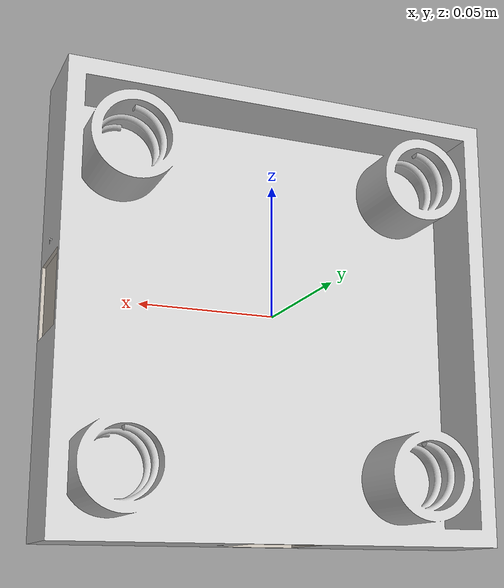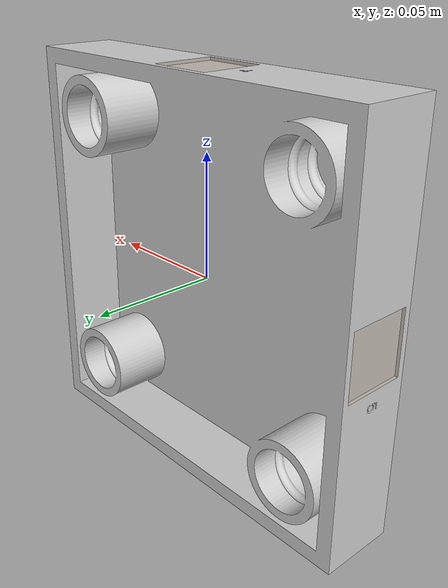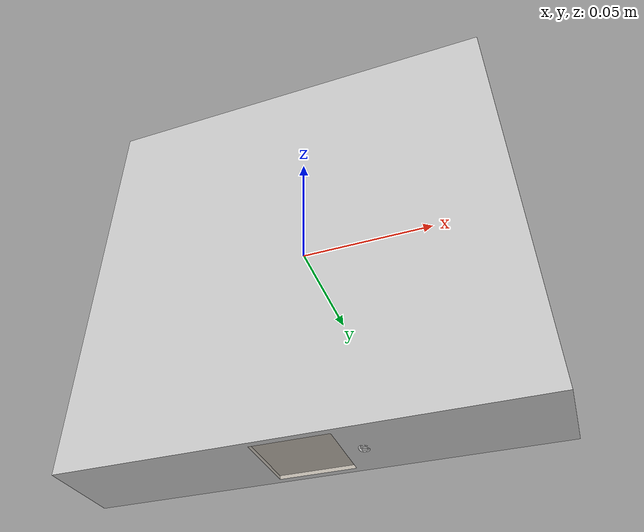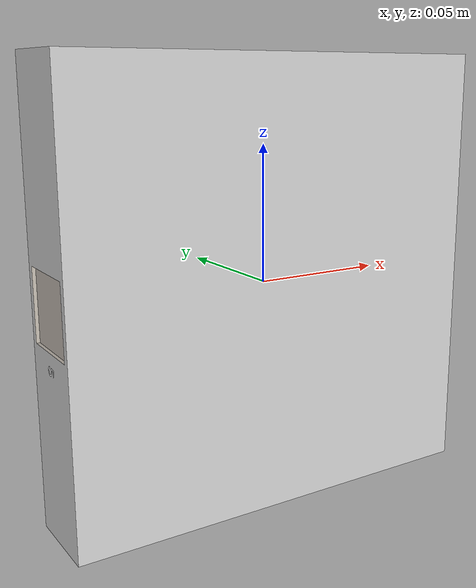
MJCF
<mujoco model="square_table_top">
  <default>
    <default class="square_table_top_visual">
      <geom group="2" type="mesh" contype="0" conaffinity="0"/>
    </default>
    <default class="square_table_top_collision">
      <geom group="3" type="mesh" solref="0.01 1" solimp=".95 .99 .0001" friction="0.5"/>
    </default>
  </default>
  <asset>
    <texture type="2d" name="tag36_11_00004" file="tag36_11_00004.png"/>
    <material name="square_table_top_Material" texture="tag36_11_00004" specular="0.5" shininess="0.25"/>
    <texture type="2d" name="tag36_11_00005" file="tag36_11_00005.png"/>
    <material name="square_table_top_Material.001" texture="tag36_11_00005" specular="0.5" shininess="0.25"/>
    <texture type="2d" name="tag36_11_00006" file="tag36_11_00006.png"/>
    <material name="square_table_top_Material.002" texture="tag36_11_00006" specular="0.5" shininess="0.25"/>
    <texture type="2d" name="tag36_11_00007" file="tag36_11_00007.png"/>
    <material name="square_table_top_Material.003" texture="tag36_11_00007" specular="0.5" shininess="0.25"/>
    <material name="square_table_top_Material.004" specular="0.5" shininess="0.25" rgba="0.800000 0.800000 0.800000 1.000000"/>
    <mesh file="square_table_top_0.obj"/>
    <mesh file="square_table_top_1.obj"/>
    <mesh file="square_table_top_2.obj"/>
    <mesh file="square_table_top_3.obj"/>
    <mesh file="square_table_top_4.obj"/>
  </asset>
  <worldbody>
    <body name="square_table_top">
      <freejoint/>
      <geom mesh="square_table_top_0" material="square_table_top_Material.003" class="square_table_top_visual"/>
      <geom mesh="square_table_top_1" material="square_table_top_Material.002" class="square_table_top_visual"/>
      <geom mesh="square_table_top_2" material="square_table_top_Material.001" class="square_table_top_visual"/>
      <geom mesh="square_table_top_3" material="square_table_top_Material" class="square_table_top_visual"/>
      <geom mesh="square_table_top_4" material="square_table_top_Material.004" class="square_table_top_visual"/>
      <geom mesh="square_table_top_0" type="sdf" class="square_table_top_collision"/>
      <geom mesh="square_table_top_1" type="sdf"  class="square_table_top_collision"/>
      <geom mesh="square_table_top_2" type="sdf"  class="square_table_top_collision"/>
      <geom mesh="square_table_top_3" type="sdf"  class="square_table_top_collision"/>
      <geom mesh="square_table_top_4" type="sdf"  class="square_table_top_collision"/>
    </body>
  </worldbody>
</mujoco>
